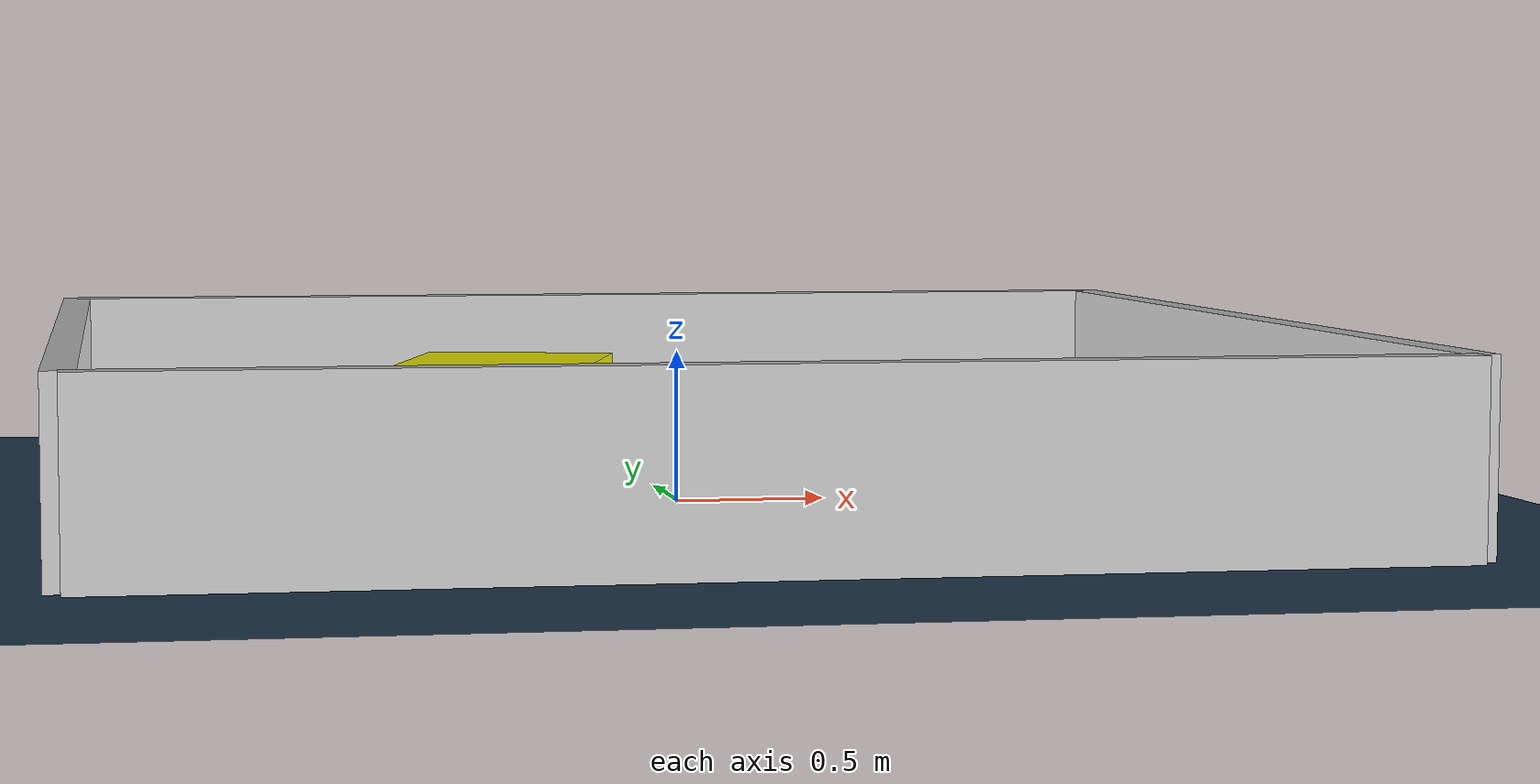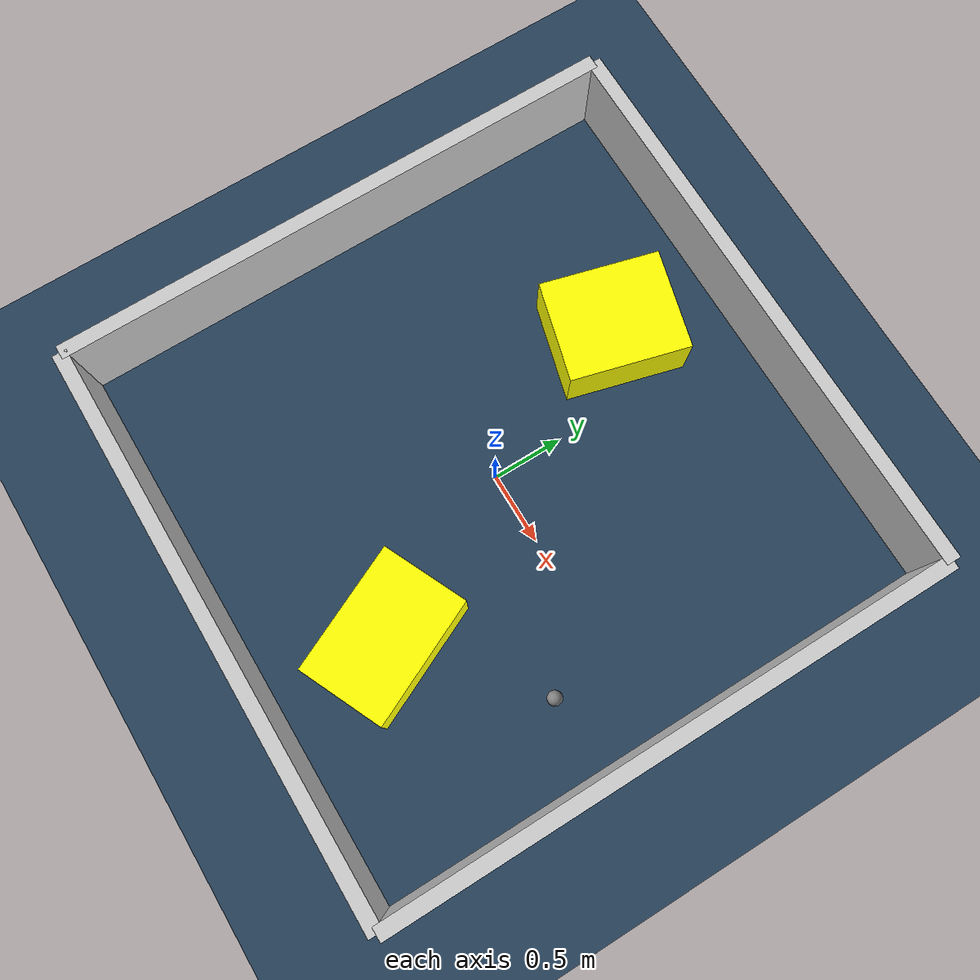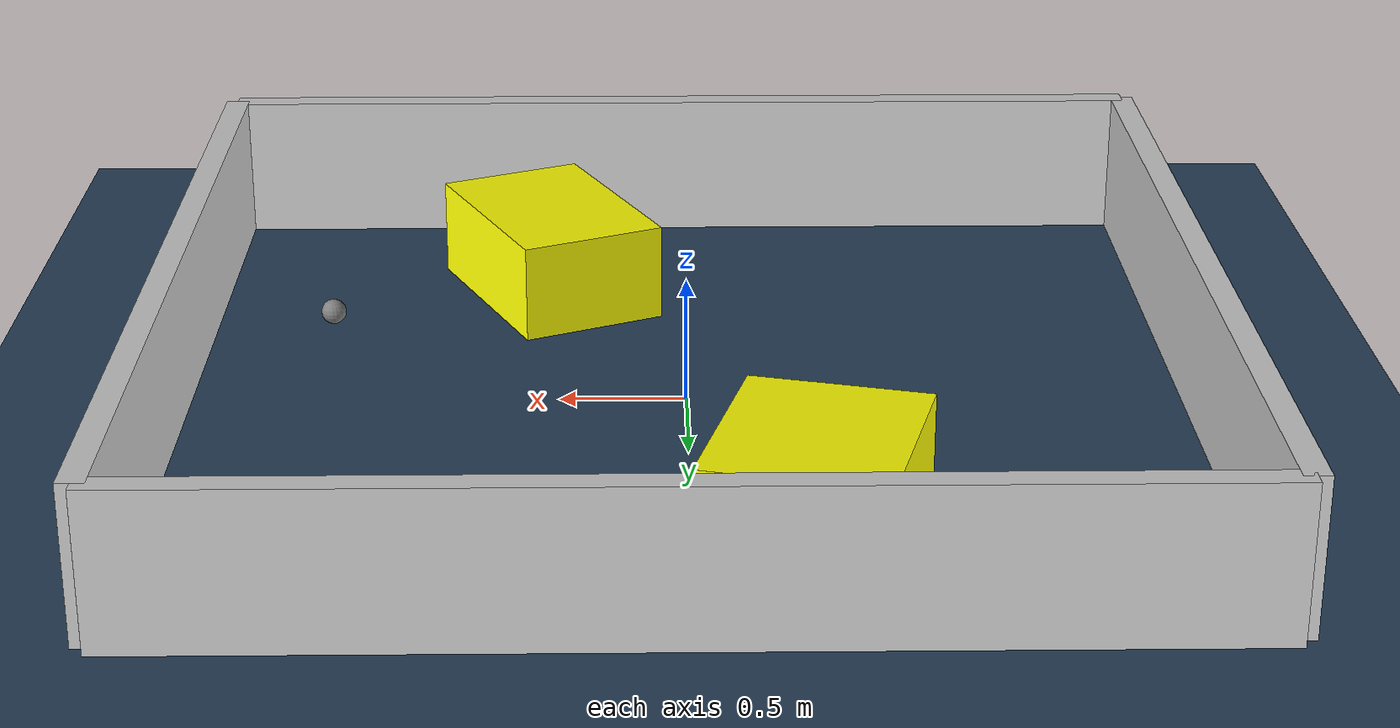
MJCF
<?xml version="1.0" ?>
<mujoco model="generated_environment">
  <option timestep="0.01" integrator="RK4" cone="elliptic"/>
  <default>
    <geom density="1"/>
  </default>
  <asset>
    <texture builtin="gradient" height="3072" rgb1="0.3 0.5 0.7" rgb2="0 0 0" type="skybox" width="512"/>
    <texture builtin="checker" height="300" mark="edge" markrgb="0.8 0.8 0.8" name="groundplane" rgb1="0.2 0.3 0.4" rgb2="0.1 0.2 0.3" type="2d" width="300"/>
    <material name="groundplane" reflectance="0.2" texrepeat="5 5" texture="groundplane" texuniform="true"/>
    <material name="robot" rgba="0.0 1.0 0.0 1"/>
  </asset>
  <worldbody>
    <light dir="0 0 -1" directional="true" pos="0 0 1.5"/>
    <geom condim="4" friction="1.0 0.005 0.001" material="groundplane" name="floor" size="0 0 0.05" type="plane"/>
    <body name="walls">
      <geom name="wall_1" condim="4" pos="-2.0 0.0 0.3" rgba="0.800000011920929 0.800000011920929 0.800000011920929 1.0" size="0.05 2.0 0.3" type="box"/>
      <geom name="wall_2" condim="4" pos="2.0 0.0 0.3" rgba="0.800000011920929 0.800000011920929 0.800000011920929 1.0" size="0.05 2.0 0.3" type="box"/>
      <geom name="wall_3" condim="4" pos="0.0 -2.0 0.3" rgba="0.800000011920929 0.800000011920929 0.800000011920929 1.0" size="2.0 0.05 0.3" type="box"/>
      <geom name="wall_4" condim="4" pos="0.0 2.0 0.3" rgba="0.800000011920929 0.800000011920929 0.800000011920929 1.0" size="2.0 0.05 0.3" type="box"/>
    </body>
    <body name="robot">
      <joint name="joint_x" type="slide" pos="0 0 0" axis="1 0 0"/>
      <joint name="joint_y" type="slide" pos="0 0 0" axis="0 1 0"/>
      <geom name="robot" type="sphere" pos="1.4265805432538943 -0.4452875473070279 0.2" size="0.05" mass="5." friction="1.0 0.005 0.0001" condim="4"/>
      <site name="sensor_ball"/>
    </body>
    <body name="obstacle_1_movable">
      <geom name="obstacle_1_movable" condim="4" pos="-0.44328774940359406 1.1884739889372633 0.2" euler="0 0 345.014519175722" friction="1.0 0.005 0.001" rgba="1 1 0 1" size="0.3502373959219015 0.417136903150106 0.2" type="box" mass="0.1"/>
      <joint type="free"/>
    </body>
    <body name="obstacle_2_movable">
      <geom name="obstacle_2_movable" condim="4" pos="0.5640658321809813 -1.149346032048085 0.2" euler="0 0 114.86444193075681" friction="1.0 0.005 0.001" rgba="1 1 0 1" size="0.45491054482172755 0.30761486395712145 0.2" type="box" mass="0.1"/>
      <joint type="free"/>
    </body>
  </worldbody>
  <actuator>
    <motor name="actuator_x" joint="joint_x" gear="1" ctrlrange="-1 1"/>
    <motor name="actuator_y" joint="joint_y" gear="1" ctrlrange="-1 1"/>
  </actuator>
</mujoco>
